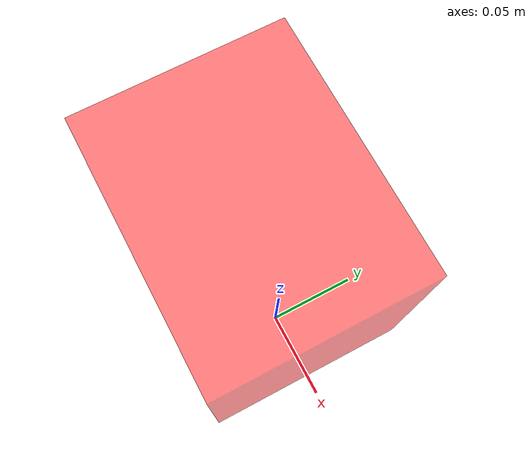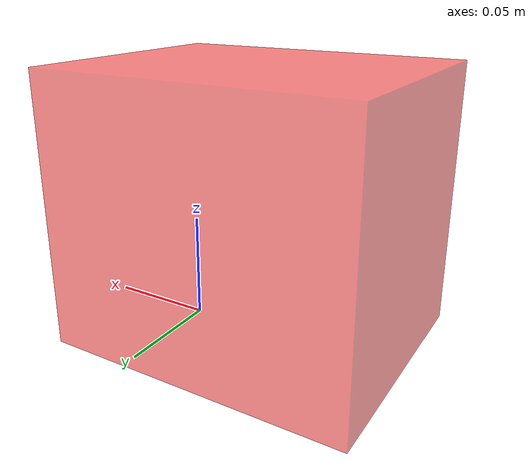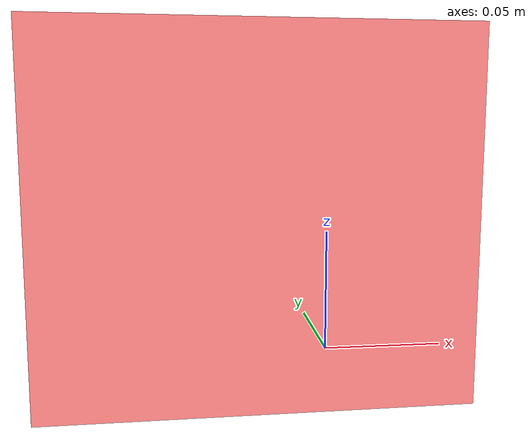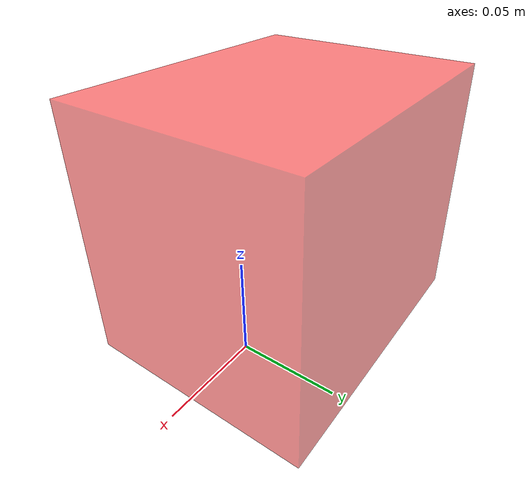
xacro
<?xml version="1.0"?>
<robot xmlns:xacro="http://www.ros.org/wiki/xacro" name="microbot_01">
  <xacro:property name="body_d" value="0.145" />
  <xacro:property name="body_w" value="0.115" />
  <xacro:property name="body_h" value="0.1265" />
  <xacro:property name="body_x" value="${0.0385-body_d/2}" />
  <xacro:property name="body_z" value="${body_h/2}" />

  <link name="base_link">
    <collision>
      <origin rpy="0 0 0" xyz="${body_x} 0 ${body_z}"/>
      <geometry>
        <box size="${body_d} ${body_w} ${body_h}"/>
      </geometry>
    </collision>
    <visual>
      <origin rpy="0 0 0" xyz="${body_x} 0 ${body_z}"/>
      <geometry>
        <box size="${body_d} ${body_w} ${body_h}"/>
      </geometry>
      <material name="vehicle_mat">
        <color rgba="1.0 0.0 0.0 0.5"/>
      </material>
    </visual>
  </link>
</robot>
